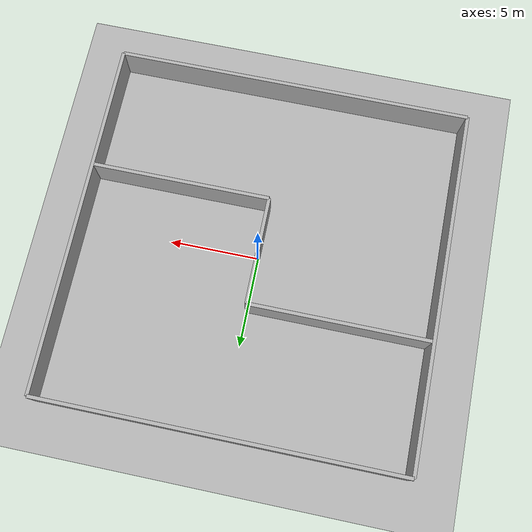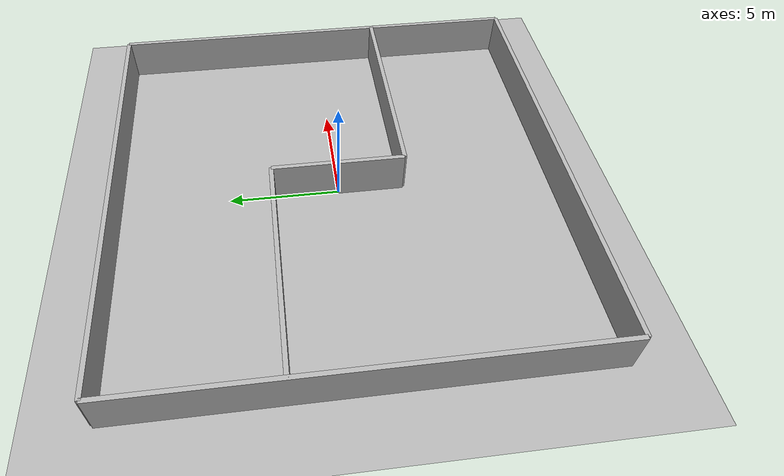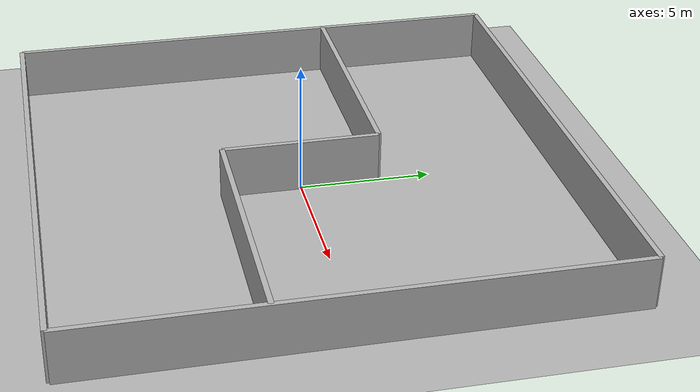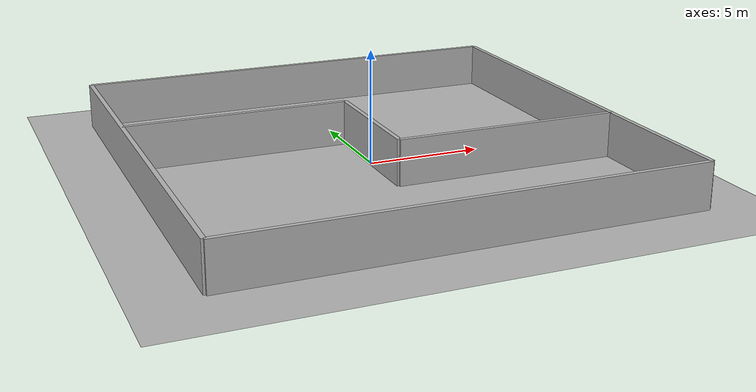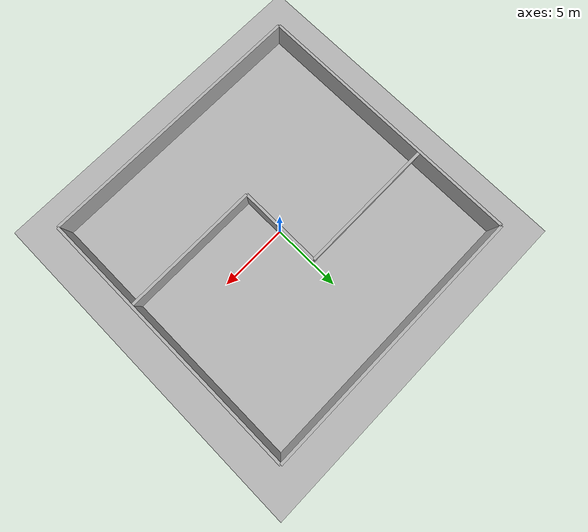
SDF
<?xml version="1.0" ?>
<sdf version="1.9">
  <world name="maze_world">

    <!-- Gazebo Harmonic system plugins -->
    <plugin filename="gz-sim-physics-system" name="gz::sim::systems::Physics"/>
    <plugin filename="gz-sim-sensors-system" name="gz::sim::systems::Sensors">
      <render_engine>ogre2</render_engine>
    </plugin>
    <plugin filename="gz-sim-imu-system" name="gz::sim::systems::Imu"/>
    <plugin filename="gz-sim-scene-broadcaster-system" name="gz::sim::systems::SceneBroadcaster"/>
    <plugin filename="gz-sim-user-commands-system" name="gz::sim::systems::UserCommands"/>

    <!-- Global light source -->
    <light type="directional" name="sun">
      <cast_shadows>true</cast_shadows>
      <pose>0 0 10 0 0 0</pose>
      <diffuse>0.8 0.8 0.8 1</diffuse>
      <specular>0.2 0.2 0.2 1</specular>
      <direction>-0.5 0.1 -0.9</direction>
    </light>

    <!-- Ground plane -->
    <model name="ground_plane">
      <static>true</static>
      <link name="link">
        <collision name="collision">
          <geometry>
            <plane>
              <normal>0 0 1</normal>
              <size>100 100</size>
            </plane>
          </geometry>
        </collision>
        <visual name="visual">
          <geometry>
            <plane>
              <normal>0 0 1</normal>
              <size>100 100</size>
            </plane>
          </geometry>
          <material>
            <ambient>0.3 0.3 0.3 1</ambient>
            <diffuse>0.7 0.7 0.7 1</diffuse>
          </material>
        </visual>
      </link>
    </model>

    <!-- Outer Boundary Wall - North -->
    <model name="wall_north">
      <static>true</static>
      <pose>0 10 1 0 0 0</pose>
      <link name="link">
        <collision name="collision">
          <geometry><box><size>20 0.2 2</size></box></geometry>
        </collision>
        <visual name="visual">
          <geometry><box><size>20 0.2 2</size></box></geometry>
          <material>
            <ambient>0.5 0.5 0.5 1</ambient>
            <diffuse>0.7 0.7 0.7 1</diffuse>
          </material>
        </visual>
      </link>
    </model>

    <!-- Outer Boundary Wall - South -->
    <model name="wall_south">
      <static>true</static>
      <pose>0 -10 1 0 0 0</pose>
      <link name="link">
        <collision name="collision">
          <geometry><box><size>20 0.2 2</size></box></geometry>
        </collision>
        <visual name="visual">
          <geometry><box><size>20 0.2 2</size></box></geometry>
          <material>
            <ambient>0.5 0.5 0.5 1</ambient>
            <diffuse>0.7 0.7 0.7 1</diffuse>
          </material>
        </visual>
      </link>
    </model>

    <!-- Outer Boundary Wall - East -->
    <model name="wall_east">
      <static>true</static>
      <pose>10 0 1 0 0 0</pose>
      <link name="link">
        <collision name="collision">
          <geometry><box><size>0.2 20 2</size></box></geometry>
        </collision>
        <visual name="visual">
          <geometry><box><size>0.2 20 2</size></box></geometry>
          <material>
            <ambient>0.5 0.5 0.5 1</ambient>
            <diffuse>0.7 0.7 0.7 1</diffuse>
          </material>
        </visual>
      </link>
    </model>

    <!-- Outer Boundary Wall - West -->
    <model name="wall_west">
      <static>true</static>
      <pose>-10 0 1 0 0 0</pose>
      <link name="link">
        <collision name="collision">
          <geometry><box><size>0.2 20 2</size></box></geometry>
        </collision>
        <visual name="visual">
          <geometry><box><size>0.2 20 2</size></box></geometry>
          <material>
            <ambient>0.5 0.5 0.5 1</ambient>
            <diffuse>0.7 0.7 0.7 1</diffuse>
          </material>
        </visual>
      </link>
    </model>

    <!-- Inner Maze Wall 1 (horizontal, blocks upper-left) -->
    <model name="wall_inner_1">
      <static>true</static>
      <pose>-5 3 1 0 0 0</pose>
      <link name="link">
        <collision name="collision">
          <geometry><box><size>10 0.2 2</size></box></geometry>
        </collision>
        <visual name="visual">
          <geometry><box><size>10 0.2 2</size></box></geometry>
          <material>
            <ambient>0.5 0.5 0.5 1</ambient>
            <diffuse>0.7 0.7 0.7 1</diffuse>
          </material>
        </visual>
      </link>
    </model>

    <!-- Inner Maze Wall 2 (horizontal, blocks lower-right) -->
    <model name="wall_inner_2">
      <static>true</static>
      <pose>5 -3 1 0 0 0</pose>
      <link name="link">
        <collision name="collision">
          <geometry><box><size>10 0.2 2</size></box></geometry>
        </collision>
        <visual name="visual">
          <geometry><box><size>10 0.2 2</size></box></geometry>
          <material>
            <ambient>0.5 0.5 0.5 1</ambient>
            <diffuse>0.7 0.7 0.7 1</diffuse>
          </material>
        </visual>
      </link>
    </model>

    <!-- Inner Maze Wall 3 (vertical, centre divider) -->
    <model name="wall_inner_3">
      <static>true</static>
      <pose>0 0 1 0 0 0</pose>
      <link name="link">
        <collision name="collision">
          <geometry><box><size>0.2 6 2</size></box></geometry>
        </collision>
        <visual name="visual">
          <geometry><box><size>0.2 6 2</size></box></geometry>
          <material>
            <ambient>0.5 0.5 0.5 1</ambient>
            <diffuse>0.7 0.7 0.7 1</diffuse>
          </material>
        </visual>
      </link>
    </model>

  </world>
</sdf>
